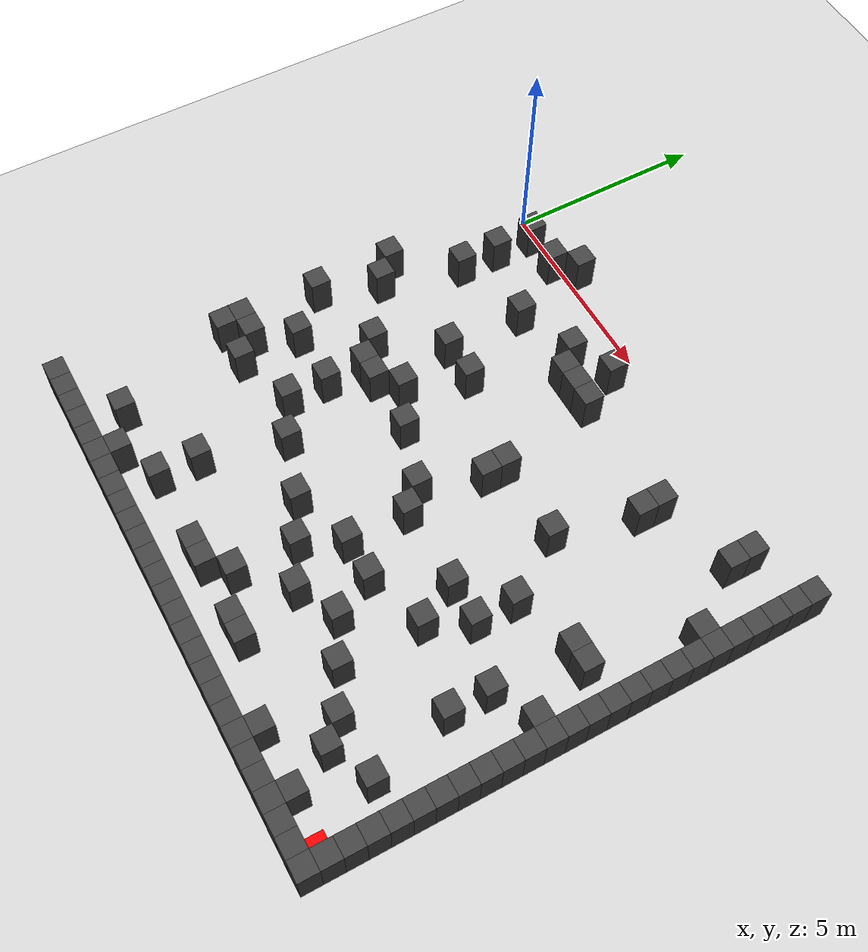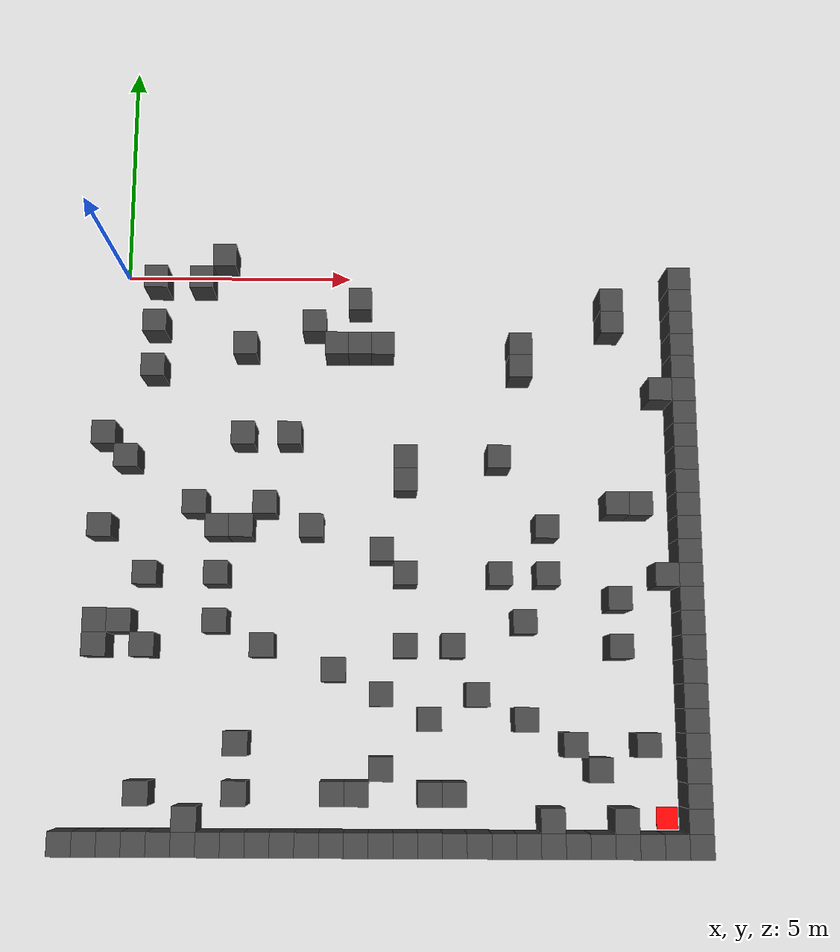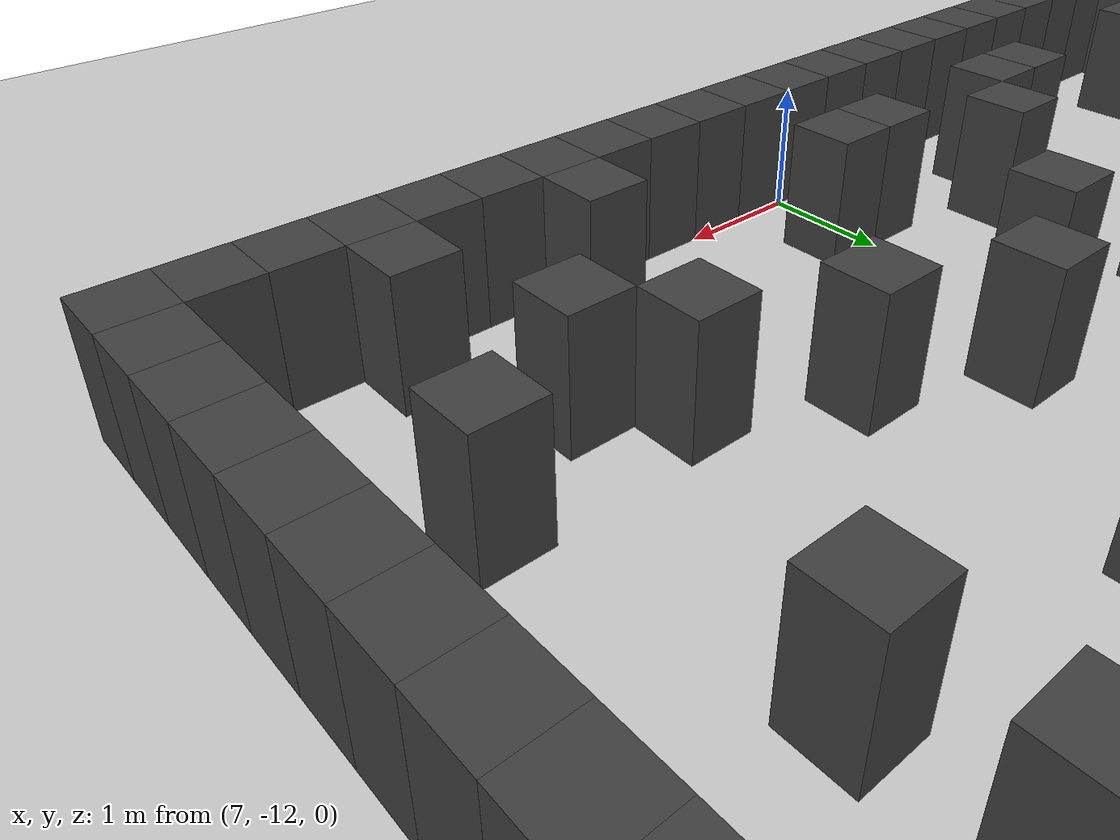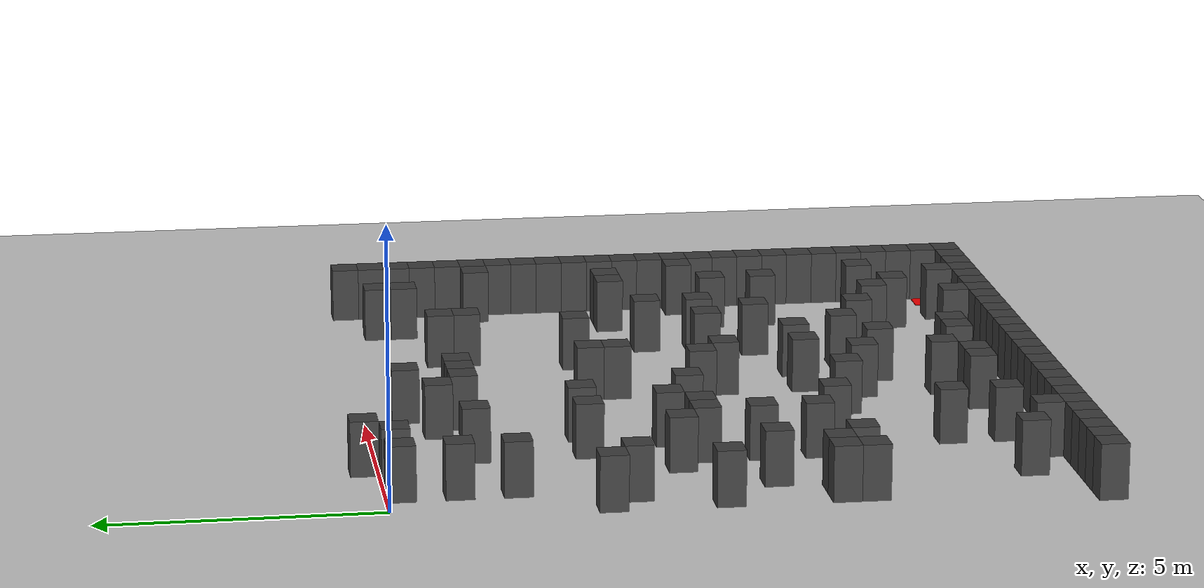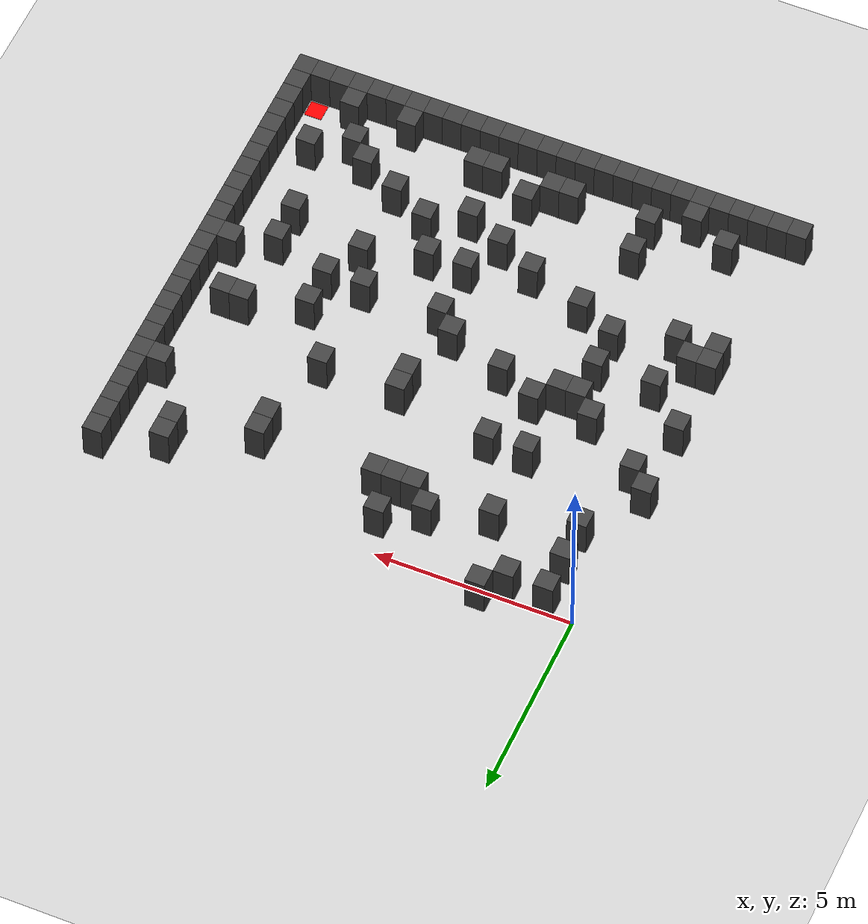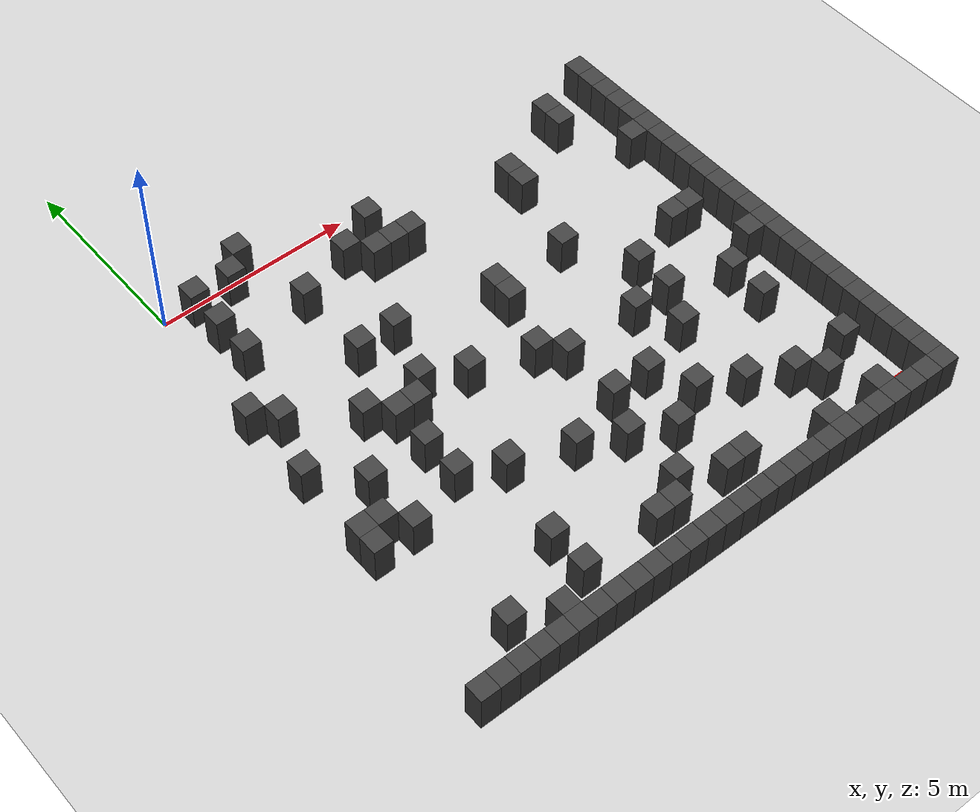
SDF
<sdf version="1.7">
 <world name="map_2375">
  <model name="ground_plane">
   <static>true</static>
   <link name="link">
    <collision name="collision">
     <geometry><plane><normal>0 0 1</normal><size>200 200</size></plane></geometry>
    </collision>
    <visual name="visual">
     <geometry><plane><normal>0 0 1</normal><size>200 200</size></plane></geometry>
     <material><ambient>0.8 0.8 0.8 1</ambient><diffuse>0.8 0.8 0.8 1</diffuse></material>
    </visual>
   </link>
  </model>
  <model name="maze_environment">
   <static>true</static>
   <link name="wall_239">
    <pose>2.250 0.250 0.500 0 0 0</pose>
    <collision name="col"><geometry><box><size>0.5 0.5 1.0</size></box></geometry></collision>
    <visual name="vis">
     <geometry><box><size>0.5 0.5 1.0</size></box></geometry>
     <material><ambient>0.15 0.15 0.15 1</ambient><diffuse>0.25 0.25 0.25 1</diffuse></material>
    </visual>
   </link>
   <link name="wall_250">
    <pose>0.750 -0.250 0.500 0 0 0</pose>
    <collision name="col"><geometry><box><size>0.5 0.5 1.0</size></box></geometry></collision>
    <visual name="vis">
     <geometry><box><size>0.5 0.5 1.0</size></box></geometry>
     <material><ambient>0.15 0.15 0.15 1</ambient><diffuse>0.25 0.25 0.25 1</diffuse></material>
    </visual>
   </link>
   <link name="wall_251">
    <pose>1.750 -0.250 0.500 0 0 0</pose>
    <collision name="col"><geometry><box><size>0.5 0.5 1.0</size></box></geometry></collision>
    <visual name="vis">
     <geometry><box><size>0.5 0.5 1.0</size></box></geometry>
     <material><ambient>0.15 0.15 0.15 1</ambient><diffuse>0.25 0.25 0.25 1</diffuse></material>
    </visual>
   </link>
   <link name="wall_252">
    <pose>12.250 -0.250 0.500 0 0 0</pose>
    <collision name="col"><geometry><box><size>0.5 0.5 1.0</size></box></geometry></collision>
    <visual name="vis">
     <geometry><box><size>0.5 0.5 1.0</size></box></geometry>
     <material><ambient>0.15 0.15 0.15 1</ambient><diffuse>0.25 0.25 0.25 1</diffuse></material>
    </visual>
   </link>
   <link name="wall_255">
    <pose>5.250 -0.750 0.500 0 0 0</pose>
    <collision name="col"><geometry><box><size>0.5 0.5 1.0</size></box></geometry></collision>
    <visual name="vis">
     <geometry><box><size>0.5 0.5 1.0</size></box></geometry>
     <material><ambient>0.15 0.15 0.15 1</ambient><diffuse>0.25 0.25 0.25 1</diffuse></material>
    </visual>
   </link>
   <link name="wall_256">
    <pose>10.750 -0.750 0.500 0 0 0</pose>
    <collision name="col"><geometry><box><size>0.5 0.5 1.0</size></box></geometry></collision>
    <visual name="vis">
     <geometry><box><size>0.5 0.5 1.0</size></box></geometry>
     <material><ambient>0.15 0.15 0.15 1</ambient><diffuse>0.25 0.25 0.25 1</diffuse></material>
    </visual>
   </link>
   <link name="wall_257">
    <pose>12.250 -0.750 0.500 0 0 0</pose>
    <collision name="col"><geometry><box><size>0.5 0.5 1.0</size></box></geometry></collision>
    <visual name="vis">
     <geometry><box><size>0.5 0.5 1.0</size></box></geometry>
     <material><ambient>0.15 0.15 0.15 1</ambient><diffuse>0.25 0.25 0.25 1</diffuse></material>
    </visual>
   </link>
   <link name="wall_266">
    <pose>0.750 -1.250 0.500 0 0 0</pose>
    <collision name="col"><geometry><box><size>0.5 0.5 1.0</size></box></geometry></collision>
    <visual name="vis">
     <geometry><box><size>0.5 0.5 1.0</size></box></geometry>
     <material><ambient>0.15 0.15 0.15 1</ambient><diffuse>0.25 0.25 0.25 1</diffuse></material>
    </visual>
   </link>
   <link name="wall_267">
    <pose>4.250 -1.250 0.500 0 0 0</pose>
    <collision name="col"><geometry><box><size>0.5 0.5 1.0</size></box></geometry></collision>
    <visual name="vis">
     <geometry><box><size>0.5 0.5 1.0</size></box></geometry>
     <material><ambient>0.15 0.15 0.15 1</ambient><diffuse>0.25 0.25 0.25 1</diffuse></material>
    </visual>
   </link>
   <link name="wall_268">
    <pose>10.750 -1.250 0.500 0 0 0</pose>
    <collision name="col"><geometry><box><size>0.5 0.5 1.0</size></box></geometry></collision>
    <visual name="vis">
     <geometry><box><size>0.5 0.5 1.0</size></box></geometry>
     <material><ambient>0.15 0.15 0.15 1</ambient><diffuse>0.25 0.25 0.25 1</diffuse></material>
    </visual>
   </link>
   <link name="wall_269">
    <pose>12.250 -1.250 0.500 0 0 0</pose>
    <collision name="col"><geometry><box><size>0.5 0.5 1.0</size></box></geometry></collision>
    <visual name="vis">
     <geometry><box><size>0.5 0.5 1.0</size></box></geometry>
     <material><ambient>0.15 0.15 0.15 1</ambient><diffuse>0.25 0.25 0.25 1</diffuse></material>
    </visual>
   </link>
   <link name="wall_273">
    <pose>2.750 -1.750 0.500 0 0 0</pose>
    <collision name="col"><geometry><box><size>0.5 0.5 1.0</size></box></geometry></collision>
    <visual name="vis">
     <geometry><box><size>0.5 0.5 1.0</size></box></geometry>
     <material><ambient>0.15 0.15 0.15 1</ambient><diffuse>0.25 0.25 0.25 1</diffuse></material>
    </visual>
   </link>
   <link name="wall_274">
    <pose>4.750 -1.750 0.500 0 0 0</pose>
    <collision name="col"><geometry><box><size>0.5 0.5 1.0</size></box></geometry></collision>
    <visual name="vis">
     <geometry><box><size>0.5 0.5 1.0</size></box></geometry>
     <material><ambient>0.15 0.15 0.15 1</ambient><diffuse>0.25 0.25 0.25 1</diffuse></material>
    </visual>
   </link>
   <link name="wall_275">
    <pose>5.250 -1.750 0.500 0 0 0</pose>
    <collision name="col"><geometry><box><size>0.5 0.5 1.0</size></box></geometry></collision>
    <visual name="vis">
     <geometry><box><size>0.5 0.5 1.0</size></box></geometry>
     <material><ambient>0.15 0.15 0.15 1</ambient><diffuse>0.25 0.25 0.25 1</diffuse></material>
    </visual>
   </link>
   <link name="wall_276">
    <pose>5.750 -1.750 0.500 0 0 0</pose>
    <collision name="col"><geometry><box><size>0.5 0.5 1.0</size></box></geometry></collision>
    <visual name="vis">
     <geometry><box><size>0.5 0.5 1.0</size></box></geometry>
     <material><ambient>0.15 0.15 0.15 1</ambient><diffuse>0.25 0.25 0.25 1</diffuse></material>
    </visual>
   </link>
   <link name="wall_277">
    <pose>8.750 -1.750 0.500 0 0 0</pose>
    <collision name="col"><geometry><box><size>0.5 0.5 1.0</size></box></geometry></collision>
    <visual name="vis">
     <geometry><box><size>0.5 0.5 1.0</size></box></geometry>
     <material><ambient>0.15 0.15 0.15 1</ambient><diffuse>0.25 0.25 0.25 1</diffuse></material>
    </visual>
   </link>
   <link name="wall_278">
    <pose>12.250 -1.750 0.500 0 0 0</pose>
    <collision name="col"><geometry><box><size>0.5 0.5 1.0</size></box></geometry></collision>
    <visual name="vis">
     <geometry><box><size>0.5 0.5 1.0</size></box></geometry>
     <material><ambient>0.15 0.15 0.15 1</ambient><diffuse>0.25 0.25 0.25 1</diffuse></material>
    </visual>
   </link>
   <link name="wall_284">
    <pose>0.750 -2.250 0.500 0 0 0</pose>
    <collision name="col"><geometry><box><size>0.5 0.5 1.0</size></box></geometry></collision>
    <visual name="vis">
     <geometry><box><size>0.5 0.5 1.0</size></box></geometry>
     <material><ambient>0.15 0.15 0.15 1</ambient><diffuse>0.25 0.25 0.25 1</diffuse></material>
    </visual>
   </link>
   <link name="wall_285">
    <pose>8.750 -2.250 0.500 0 0 0</pose>
    <collision name="col"><geometry><box><size>0.5 0.5 1.0</size></box></geometry></collision>
    <visual name="vis">
     <geometry><box><size>0.5 0.5 1.0</size></box></geometry>
     <material><ambient>0.15 0.15 0.15 1</ambient><diffuse>0.25 0.25 0.25 1</diffuse></material>
    </visual>
   </link>
   <link name="wall_286">
    <pose>12.250 -2.250 0.500 0 0 0</pose>
    <collision name="col"><geometry><box><size>0.5 0.5 1.0</size></box></geometry></collision>
    <visual name="vis">
     <geometry><box><size>0.5 0.5 1.0</size></box></geometry>
     <material><ambient>0.15 0.15 0.15 1</ambient><diffuse>0.25 0.25 0.25 1</diffuse></material>
    </visual>
   </link>
   <link name="wall_292">
    <pose>11.750 -2.750 0.500 0 0 0</pose>
    <collision name="col"><geometry><box><size>0.5 0.5 1.0</size></box></geometry></collision>
    <visual name="vis">
     <geometry><box><size>0.5 0.5 1.0</size></box></geometry>
     <material><ambient>0.15 0.15 0.15 1</ambient><diffuse>0.25 0.25 0.25 1</diffuse></material>
    </visual>
   </link>
   <link name="wall_293">
    <pose>12.250 -2.750 0.500 0 0 0</pose>
    <collision name="col"><geometry><box><size>0.5 0.5 1.0</size></box></geometry></collision>
    <visual name="vis">
     <geometry><box><size>0.5 0.5 1.0</size></box></geometry>
     <material><ambient>0.15 0.15 0.15 1</ambient><diffuse>0.25 0.25 0.25 1</diffuse></material>
    </visual>
   </link>
   <link name="wall_298">
    <pose>12.250 -3.250 0.500 0 0 0</pose>
    <collision name="col"><geometry><box><size>0.5 0.5 1.0</size></box></geometry></collision>
    <visual name="vis">
     <geometry><box><size>0.5 0.5 1.0</size></box></geometry>
     <material><ambient>0.15 0.15 0.15 1</ambient><diffuse>0.25 0.25 0.25 1</diffuse></material>
    </visual>
   </link>
   <link name="wall_303">
    <pose>-0.250 -3.750 0.500 0 0 0</pose>
    <collision name="col"><geometry><box><size>0.5 0.5 1.0</size></box></geometry></collision>
    <visual name="vis">
     <geometry><box><size>0.5 0.5 1.0</size></box></geometry>
     <material><ambient>0.15 0.15 0.15 1</ambient><diffuse>0.25 0.25 0.25 1</diffuse></material>
    </visual>
   </link>
   <link name="wall_304">
    <pose>2.750 -3.750 0.500 0 0 0</pose>
    <collision name="col"><geometry><box><size>0.5 0.5 1.0</size></box></geometry></collision>
    <visual name="vis">
     <geometry><box><size>0.5 0.5 1.0</size></box></geometry>
     <material><ambient>0.15 0.15 0.15 1</ambient><diffuse>0.25 0.25 0.25 1</diffuse></material>
    </visual>
   </link>
   <link name="wall_305">
    <pose>3.750 -3.750 0.500 0 0 0</pose>
    <collision name="col"><geometry><box><size>0.5 0.5 1.0</size></box></geometry></collision>
    <visual name="vis">
     <geometry><box><size>0.5 0.5 1.0</size></box></geometry>
     <material><ambient>0.15 0.15 0.15 1</ambient><diffuse>0.25 0.25 0.25 1</diffuse></material>
    </visual>
   </link>
   <link name="wall_306">
    <pose>12.250 -3.750 0.500 0 0 0</pose>
    <collision name="col"><geometry><box><size>0.5 0.5 1.0</size></box></geometry></collision>
    <visual name="vis">
     <geometry><box><size>0.5 0.5 1.0</size></box></geometry>
     <material><ambient>0.15 0.15 0.15 1</ambient><diffuse>0.25 0.25 0.25 1</diffuse></material>
    </visual>
   </link>
   <link name="wall_312">
    <pose>0.250 -4.250 0.500 0 0 0</pose>
    <collision name="col"><geometry><box><size>0.5 0.5 1.0</size></box></geometry></collision>
    <visual name="vis">
     <geometry><box><size>0.5 0.5 1.0</size></box></geometry>
     <material><ambient>0.15 0.15 0.15 1</ambient><diffuse>0.25 0.25 0.25 1</diffuse></material>
    </visual>
   </link>
   <link name="wall_313">
    <pose>6.250 -4.250 0.500 0 0 0</pose>
    <collision name="col"><geometry><box><size>0.5 0.5 1.0</size></box></geometry></collision>
    <visual name="vis">
     <geometry><box><size>0.5 0.5 1.0</size></box></geometry>
     <material><ambient>0.15 0.15 0.15 1</ambient><diffuse>0.25 0.25 0.25 1</diffuse></material>
    </visual>
   </link>
   <link name="wall_314">
    <pose>8.250 -4.250 0.500 0 0 0</pose>
    <collision name="col"><geometry><box><size>0.5 0.5 1.0</size></box></geometry></collision>
    <visual name="vis">
     <geometry><box><size>0.5 0.5 1.0</size></box></geometry>
     <material><ambient>0.15 0.15 0.15 1</ambient><diffuse>0.25 0.25 0.25 1</diffuse></material>
    </visual>
   </link>
   <link name="wall_315">
    <pose>12.250 -4.250 0.500 0 0 0</pose>
    <collision name="col"><geometry><box><size>0.5 0.5 1.0</size></box></geometry></collision>
    <visual name="vis">
     <geometry><box><size>0.5 0.5 1.0</size></box></geometry>
     <material><ambient>0.15 0.15 0.15 1</ambient><diffuse>0.25 0.25 0.25 1</diffuse></material>
    </visual>
   </link>
   <link name="wall_319">
    <pose>6.250 -4.750 0.500 0 0 0</pose>
    <collision name="col"><geometry><box><size>0.5 0.5 1.0</size></box></geometry></collision>
    <visual name="vis">
     <geometry><box><size>0.5 0.5 1.0</size></box></geometry>
     <material><ambient>0.15 0.15 0.15 1</ambient><diffuse>0.25 0.25 0.25 1</diffuse></material>
    </visual>
   </link>
   <link name="wall_320">
    <pose>12.250 -4.750 0.500 0 0 0</pose>
    <collision name="col"><geometry><box><size>0.5 0.5 1.0</size></box></geometry></collision>
    <visual name="vis">
     <geometry><box><size>0.5 0.5 1.0</size></box></geometry>
     <material><ambient>0.15 0.15 0.15 1</ambient><diffuse>0.25 0.25 0.25 1</diffuse></material>
    </visual>
   </link>
   <link name="wall_325">
    <pose>1.750 -5.250 0.500 0 0 0</pose>
    <collision name="col"><geometry><box><size>0.5 0.5 1.0</size></box></geometry></collision>
    <visual name="vis">
     <geometry><box><size>0.5 0.5 1.0</size></box></geometry>
     <material><ambient>0.15 0.15 0.15 1</ambient><diffuse>0.25 0.25 0.25 1</diffuse></material>
    </visual>
   </link>
   <link name="wall_326">
    <pose>3.250 -5.250 0.500 0 0 0</pose>
    <collision name="col"><geometry><box><size>0.5 0.5 1.0</size></box></geometry></collision>
    <visual name="vis">
     <geometry><box><size>0.5 0.5 1.0</size></box></geometry>
     <material><ambient>0.15 0.15 0.15 1</ambient><diffuse>0.25 0.25 0.25 1</diffuse></material>
    </visual>
   </link>
   <link name="wall_327">
    <pose>10.750 -5.250 0.500 0 0 0</pose>
    <collision name="col"><geometry><box><size>0.5 0.5 1.0</size></box></geometry></collision>
    <visual name="vis">
     <geometry><box><size>0.5 0.5 1.0</size></box></geometry>
     <material><ambient>0.15 0.15 0.15 1</ambient><diffuse>0.25 0.25 0.25 1</diffuse></material>
    </visual>
   </link>
   <link name="wall_328">
    <pose>11.250 -5.250 0.500 0 0 0</pose>
    <collision name="col"><geometry><box><size>0.5 0.5 1.0</size></box></geometry></collision>
    <visual name="vis">
     <geometry><box><size>0.5 0.5 1.0</size></box></geometry>
     <material><ambient>0.15 0.15 0.15 1</ambient><diffuse>0.25 0.25 0.25 1</diffuse></material>
    </visual>
   </link>
   <link name="wall_329">
    <pose>12.250 -5.250 0.500 0 0 0</pose>
    <collision name="col"><geometry><box><size>0.5 0.5 1.0</size></box></geometry></collision>
    <visual name="vis">
     <geometry><box><size>0.5 0.5 1.0</size></box></geometry>
     <material><ambient>0.15 0.15 0.15 1</ambient><diffuse>0.25 0.25 0.25 1</diffuse></material>
    </visual>
   </link>
   <link name="wall_332">
    <pose>-0.250 -5.750 0.500 0 0 0</pose>
    <collision name="col"><geometry><box><size>0.5 0.5 1.0</size></box></geometry></collision>
    <visual name="vis">
     <geometry><box><size>0.5 0.5 1.0</size></box></geometry>
     <material><ambient>0.15 0.15 0.15 1</ambient><diffuse>0.25 0.25 0.25 1</diffuse></material>
    </visual>
   </link>
   <link name="wall_333">
    <pose>2.250 -5.750 0.500 0 0 0</pose>
    <collision name="col"><geometry><box><size>0.5 0.5 1.0</size></box></geometry></collision>
    <visual name="vis">
     <geometry><box><size>0.5 0.5 1.0</size></box></geometry>
     <material><ambient>0.15 0.15 0.15 1</ambient><diffuse>0.25 0.25 0.25 1</diffuse></material>
    </visual>
   </link>
   <link name="wall_334">
    <pose>2.750 -5.750 0.500 0 0 0</pose>
    <collision name="col"><geometry><box><size>0.5 0.5 1.0</size></box></geometry></collision>
    <visual name="vis">
     <geometry><box><size>0.5 0.5 1.0</size></box></geometry>
     <material><ambient>0.15 0.15 0.15 1</ambient><diffuse>0.25 0.25 0.25 1</diffuse></material>
    </visual>
   </link>
   <link name="wall_335">
    <pose>4.250 -5.750 0.500 0 0 0</pose>
    <collision name="col"><geometry><box><size>0.5 0.5 1.0</size></box></geometry></collision>
    <visual name="vis">
     <geometry><box><size>0.5 0.5 1.0</size></box></geometry>
     <material><ambient>0.15 0.15 0.15 1</ambient><diffuse>0.25 0.25 0.25 1</diffuse></material>
    </visual>
   </link>
   <link name="wall_336">
    <pose>9.250 -5.750 0.500 0 0 0</pose>
    <collision name="col"><geometry><box><size>0.5 0.5 1.0</size></box></geometry></collision>
    <visual name="vis">
     <geometry><box><size>0.5 0.5 1.0</size></box></geometry>
     <material><ambient>0.15 0.15 0.15 1</ambient><diffuse>0.25 0.25 0.25 1</diffuse></material>
    </visual>
   </link>
   <link name="wall_337">
    <pose>12.250 -5.750 0.500 0 0 0</pose>
    <collision name="col"><geometry><box><size>0.5 0.5 1.0</size></box></geometry></collision>
    <visual name="vis">
     <geometry><box><size>0.5 0.5 1.0</size></box></geometry>
     <material><ambient>0.15 0.15 0.15 1</ambient><diffuse>0.25 0.25 0.25 1</diffuse></material>
    </visual>
   </link>
   <link name="wall_341">
    <pose>5.750 -6.250 0.500 0 0 0</pose>
    <collision name="col"><geometry><box><size>0.5 0.5 1.0</size></box></geometry></collision>
    <visual name="vis">
     <geometry><box><size>0.5 0.5 1.0</size></box></geometry>
     <material><ambient>0.15 0.15 0.15 1</ambient><diffuse>0.25 0.25 0.25 1</diffuse></material>
    </visual>
   </link>
   <link name="wall_342">
    <pose>12.250 -6.250 0.500 0 0 0</pose>
    <collision name="col"><geometry><box><size>0.5 0.5 1.0</size></box></geometry></collision>
    <visual name="vis">
     <geometry><box><size>0.5 0.5 1.0</size></box></geometry>
     <material><ambient>0.15 0.15 0.15 1</ambient><diffuse>0.25 0.25 0.25 1</diffuse></material>
    </visual>
   </link>
   <link name="wall_345">
    <pose>0.750 -6.750 0.500 0 0 0</pose>
    <collision name="col"><geometry><box><size>0.5 0.5 1.0</size></box></geometry></collision>
    <visual name="vis">
     <geometry><box><size>0.5 0.5 1.0</size></box></geometry>
     <material><ambient>0.15 0.15 0.15 1</ambient><diffuse>0.25 0.25 0.25 1</diffuse></material>
    </visual>
   </link>
   <link name="wall_346">
    <pose>2.250 -6.750 0.500 0 0 0</pose>
    <collision name="col"><geometry><box><size>0.5 0.5 1.0</size></box></geometry></collision>
    <visual name="vis">
     <geometry><box><size>0.5 0.5 1.0</size></box></geometry>
     <material><ambient>0.15 0.15 0.15 1</ambient><diffuse>0.25 0.25 0.25 1</diffuse></material>
    </visual>
   </link>
   <link name="wall_347">
    <pose>6.250 -6.750 0.500 0 0 0</pose>
    <collision name="col"><geometry><box><size>0.5 0.5 1.0</size></box></geometry></collision>
    <visual name="vis">
     <geometry><box><size>0.5 0.5 1.0</size></box></geometry>
     <material><ambient>0.15 0.15 0.15 1</ambient><diffuse>0.25 0.25 0.25 1</diffuse></material>
    </visual>
   </link>
   <link name="wall_348">
    <pose>8.250 -6.750 0.500 0 0 0</pose>
    <collision name="col"><geometry><box><size>0.5 0.5 1.0</size></box></geometry></collision>
    <visual name="vis">
     <geometry><box><size>0.5 0.5 1.0</size></box></geometry>
     <material><ambient>0.15 0.15 0.15 1</ambient><diffuse>0.25 0.25 0.25 1</diffuse></material>
    </visual>
   </link>
   <link name="wall_349">
    <pose>9.250 -6.750 0.500 0 0 0</pose>
    <collision name="col"><geometry><box><size>0.5 0.5 1.0</size></box></geometry></collision>
    <visual name="vis">
     <geometry><box><size>0.5 0.5 1.0</size></box></geometry>
     <material><ambient>0.15 0.15 0.15 1</ambient><diffuse>0.25 0.25 0.25 1</diffuse></material>
    </visual>
   </link>
   <link name="wall_350">
    <pose>11.750 -6.750 0.500 0 0 0</pose>
    <collision name="col"><geometry><box><size>0.5 0.5 1.0</size></box></geometry></collision>
    <visual name="vis">
     <geometry><box><size>0.5 0.5 1.0</size></box></geometry>
     <material><ambient>0.15 0.15 0.15 1</ambient><diffuse>0.25 0.25 0.25 1</diffuse></material>
    </visual>
   </link>
   <link name="wall_351">
    <pose>12.250 -6.750 0.500 0 0 0</pose>
    <collision name="col"><geometry><box><size>0.5 0.5 1.0</size></box></geometry></collision>
    <visual name="vis">
     <geometry><box><size>0.5 0.5 1.0</size></box></geometry>
     <material><ambient>0.15 0.15 0.15 1</ambient><diffuse>0.25 0.25 0.25 1</diffuse></material>
    </visual>
   </link>
   <link name="wall_356">
    <pose>10.750 -7.250 0.500 0 0 0</pose>
    <collision name="col"><geometry><box><size>0.5 0.5 1.0</size></box></geometry></collision>
    <visual name="vis">
     <geometry><box><size>0.5 0.5 1.0</size></box></geometry>
     <material><ambient>0.15 0.15 0.15 1</ambient><diffuse>0.25 0.25 0.25 1</diffuse></material>
    </visual>
   </link>
   <link name="wall_357">
    <pose>12.250 -7.250 0.500 0 0 0</pose>
    <collision name="col"><geometry><box><size>0.5 0.5 1.0</size></box></geometry></collision>
    <visual name="vis">
     <geometry><box><size>0.5 0.5 1.0</size></box></geometry>
     <material><ambient>0.15 0.15 0.15 1</ambient><diffuse>0.25 0.25 0.25 1</diffuse></material>
    </visual>
   </link>
   <link name="wall_360">
    <pose>-0.250 -7.750 0.500 0 0 0</pose>
    <collision name="col"><geometry><box><size>0.5 0.5 1.0</size></box></geometry></collision>
    <visual name="vis">
     <geometry><box><size>0.5 0.5 1.0</size></box></geometry>
     <material><ambient>0.15 0.15 0.15 1</ambient><diffuse>0.25 0.25 0.25 1</diffuse></material>
    </visual>
   </link>
   <link name="wall_361">
    <pose>0.250 -7.750 0.500 0 0 0</pose>
    <collision name="col"><geometry><box><size>0.5 0.5 1.0</size></box></geometry></collision>
    <visual name="vis">
     <geometry><box><size>0.5 0.5 1.0</size></box></geometry>
     <material><ambient>0.15 0.15 0.15 1</ambient><diffuse>0.25 0.25 0.25 1</diffuse></material>
    </visual>
   </link>
   <link name="wall_362">
    <pose>2.250 -7.750 0.500 0 0 0</pose>
    <collision name="col"><geometry><box><size>0.5 0.5 1.0</size></box></geometry></collision>
    <visual name="vis">
     <geometry><box><size>0.5 0.5 1.0</size></box></geometry>
     <material><ambient>0.15 0.15 0.15 1</ambient><diffuse>0.25 0.25 0.25 1</diffuse></material>
    </visual>
   </link>
   <link name="wall_363">
    <pose>8.750 -7.750 0.500 0 0 0</pose>
    <collision name="col"><geometry><box><size>0.5 0.5 1.0</size></box></geometry></collision>
    <visual name="vis">
     <geometry><box><size>0.5 0.5 1.0</size></box></geometry>
     <material><ambient>0.15 0.15 0.15 1</ambient><diffuse>0.25 0.25 0.25 1</diffuse></material>
    </visual>
   </link>
   <link name="wall_364">
    <pose>12.250 -7.750 0.500 0 0 0</pose>
    <collision name="col"><geometry><box><size>0.5 0.5 1.0</size></box></geometry></collision>
    <visual name="vis">
     <geometry><box><size>0.5 0.5 1.0</size></box></geometry>
     <material><ambient>0.15 0.15 0.15 1</ambient><diffuse>0.25 0.25 0.25 1</diffuse></material>
    </visual>
   </link>
   <link name="wall_368">
    <pose>-0.250 -8.250 0.500 0 0 0</pose>
    <collision name="col"><geometry><box><size>0.5 0.5 1.0</size></box></geometry></collision>
    <visual name="vis">
     <geometry><box><size>0.5 0.5 1.0</size></box></geometry>
     <material><ambient>0.15 0.15 0.15 1</ambient><diffuse>0.25 0.25 0.25 1</diffuse></material>
    </visual>
   </link>
   <link name="wall_369">
    <pose>0.750 -8.250 0.500 0 0 0</pose>
    <collision name="col"><geometry><box><size>0.5 0.5 1.0</size></box></geometry></collision>
    <visual name="vis">
     <geometry><box><size>0.5 0.5 1.0</size></box></geometry>
     <material><ambient>0.15 0.15 0.15 1</ambient><diffuse>0.25 0.25 0.25 1</diffuse></material>
    </visual>
   </link>
   <link name="wall_370">
    <pose>3.250 -8.250 0.500 0 0 0</pose>
    <collision name="col"><geometry><box><size>0.5 0.5 1.0</size></box></geometry></collision>
    <visual name="vis">
     <geometry><box><size>0.5 0.5 1.0</size></box></geometry>
     <material><ambient>0.15 0.15 0.15 1</ambient><diffuse>0.25 0.25 0.25 1</diffuse></material>
    </visual>
   </link>
   <link name="wall_371">
    <pose>6.250 -8.250 0.500 0 0 0</pose>
    <collision name="col"><geometry><box><size>0.5 0.5 1.0</size></box></geometry></collision>
    <visual name="vis">
     <geometry><box><size>0.5 0.5 1.0</size></box></geometry>
     <material><ambient>0.15 0.15 0.15 1</ambient><diffuse>0.25 0.25 0.25 1</diffuse></material>
    </visual>
   </link>
   <link name="wall_372">
    <pose>7.250 -8.250 0.500 0 0 0</pose>
    <collision name="col"><geometry><box><size>0.5 0.5 1.0</size></box></geometry></collision>
    <visual name="vis">
     <geometry><box><size>0.5 0.5 1.0</size></box></geometry>
     <material><ambient>0.15 0.15 0.15 1</ambient><diffuse>0.25 0.25 0.25 1</diffuse></material>
    </visual>
   </link>
   <link name="wall_373">
    <pose>10.750 -8.250 0.500 0 0 0</pose>
    <collision name="col"><geometry><box><size>0.5 0.5 1.0</size></box></geometry></collision>
    <visual name="vis">
     <geometry><box><size>0.5 0.5 1.0</size></box></geometry>
     <material><ambient>0.15 0.15 0.15 1</ambient><diffuse>0.25 0.25 0.25 1</diffuse></material>
    </visual>
   </link>
   <link name="wall_374">
    <pose>12.250 -8.250 0.500 0 0 0</pose>
    <collision name="col"><geometry><box><size>0.5 0.5 1.0</size></box></geometry></collision>
    <visual name="vis">
     <geometry><box><size>0.5 0.5 1.0</size></box></geometry>
     <material><ambient>0.15 0.15 0.15 1</ambient><diffuse>0.25 0.25 0.25 1</diffuse></material>
    </visual>
   </link>
   <link name="wall_381">
    <pose>4.750 -8.750 0.500 0 0 0</pose>
    <collision name="col"><geometry><box><size>0.5 0.5 1.0</size></box></geometry></collision>
    <visual name="vis">
     <geometry><box><size>0.5 0.5 1.0</size></box></geometry>
     <material><ambient>0.15 0.15 0.15 1</ambient><diffuse>0.25 0.25 0.25 1</diffuse></material>
    </visual>
   </link>
   <link name="wall_382">
    <pose>12.250 -8.750 0.500 0 0 0</pose>
    <collision name="col"><geometry><box><size>0.5 0.5 1.0</size></box></geometry></collision>
    <visual name="vis">
     <geometry><box><size>0.5 0.5 1.0</size></box></geometry>
     <material><ambient>0.15 0.15 0.15 1</ambient><diffuse>0.25 0.25 0.25 1</diffuse></material>
    </visual>
   </link>
   <link name="wall_388">
    <pose>5.750 -9.250 0.500 0 0 0</pose>
    <collision name="col"><geometry><box><size>0.5 0.5 1.0</size></box></geometry></collision>
    <visual name="vis">
     <geometry><box><size>0.5 0.5 1.0</size></box></geometry>
     <material><ambient>0.15 0.15 0.15 1</ambient><diffuse>0.25 0.25 0.25 1</diffuse></material>
    </visual>
   </link>
   <link name="wall_389">
    <pose>7.750 -9.250 0.500 0 0 0</pose>
    <collision name="col"><geometry><box><size>0.5 0.5 1.0</size></box></geometry></collision>
    <visual name="vis">
     <geometry><box><size>0.5 0.5 1.0</size></box></geometry>
     <material><ambient>0.15 0.15 0.15 1</ambient><diffuse>0.25 0.25 0.25 1</diffuse></material>
    </visual>
   </link>
   <link name="wall_390">
    <pose>12.250 -9.250 0.500 0 0 0</pose>
    <collision name="col"><geometry><box><size>0.5 0.5 1.0</size></box></geometry></collision>
    <visual name="vis">
     <geometry><box><size>0.5 0.5 1.0</size></box></geometry>
     <material><ambient>0.15 0.15 0.15 1</ambient><diffuse>0.25 0.25 0.25 1</diffuse></material>
    </visual>
   </link>
   <link name="wall_394">
    <pose>6.750 -9.750 0.500 0 0 0</pose>
    <collision name="col"><geometry><box><size>0.5 0.5 1.0</size></box></geometry></collision>
    <visual name="vis">
     <geometry><box><size>0.5 0.5 1.0</size></box></geometry>
     <material><ambient>0.15 0.15 0.15 1</ambient><diffuse>0.25 0.25 0.25 1</diffuse></material>
    </visual>
   </link>
   <link name="wall_395">
    <pose>8.750 -9.750 0.500 0 0 0</pose>
    <collision name="col"><geometry><box><size>0.5 0.5 1.0</size></box></geometry></collision>
    <visual name="vis">
     <geometry><box><size>0.5 0.5 1.0</size></box></geometry>
     <material><ambient>0.15 0.15 0.15 1</ambient><diffuse>0.25 0.25 0.25 1</diffuse></material>
    </visual>
   </link>
   <link name="wall_396">
    <pose>12.250 -9.750 0.500 0 0 0</pose>
    <collision name="col"><geometry><box><size>0.5 0.5 1.0</size></box></geometry></collision>
    <visual name="vis">
     <geometry><box><size>0.5 0.5 1.0</size></box></geometry>
     <material><ambient>0.15 0.15 0.15 1</ambient><diffuse>0.25 0.25 0.25 1</diffuse></material>
    </visual>
   </link>
   <link name="wall_401">
    <pose>2.750 -10.250 0.500 0 0 0</pose>
    <collision name="col"><geometry><box><size>0.5 0.5 1.0</size></box></geometry></collision>
    <visual name="vis">
     <geometry><box><size>0.5 0.5 1.0</size></box></geometry>
     <material><ambient>0.15 0.15 0.15 1</ambient><diffuse>0.25 0.25 0.25 1</diffuse></material>
    </visual>
   </link>
   <link name="wall_402">
    <pose>9.750 -10.250 0.500 0 0 0</pose>
    <collision name="col"><geometry><box><size>0.5 0.5 1.0</size></box></geometry></collision>
    <visual name="vis">
     <geometry><box><size>0.5 0.5 1.0</size></box></geometry>
     <material><ambient>0.15 0.15 0.15 1</ambient><diffuse>0.25 0.25 0.25 1</diffuse></material>
    </visual>
   </link>
   <link name="wall_403">
    <pose>11.250 -10.250 0.500 0 0 0</pose>
    <collision name="col"><geometry><box><size>0.5 0.5 1.0</size></box></geometry></collision>
    <visual name="vis">
     <geometry><box><size>0.5 0.5 1.0</size></box></geometry>
     <material><ambient>0.15 0.15 0.15 1</ambient><diffuse>0.25 0.25 0.25 1</diffuse></material>
    </visual>
   </link>
   <link name="wall_404">
    <pose>12.250 -10.250 0.500 0 0 0</pose>
    <collision name="col"><geometry><box><size>0.5 0.5 1.0</size></box></geometry></collision>
    <visual name="vis">
     <geometry><box><size>0.5 0.5 1.0</size></box></geometry>
     <material><ambient>0.15 0.15 0.15 1</ambient><diffuse>0.25 0.25 0.25 1</diffuse></material>
    </visual>
   </link>
   <link name="wall_410">
    <pose>5.750 -10.750 0.500 0 0 0</pose>
    <collision name="col"><geometry><box><size>0.5 0.5 1.0</size></box></geometry></collision>
    <visual name="vis">
     <geometry><box><size>0.5 0.5 1.0</size></box></geometry>
     <material><ambient>0.15 0.15 0.15 1</ambient><diffuse>0.25 0.25 0.25 1</diffuse></material>
    </visual>
   </link>
   <link name="wall_411">
    <pose>10.250 -10.750 0.500 0 0 0</pose>
    <collision name="col"><geometry><box><size>0.5 0.5 1.0</size></box></geometry></collision>
    <visual name="vis">
     <geometry><box><size>0.5 0.5 1.0</size></box></geometry>
     <material><ambient>0.15 0.15 0.15 1</ambient><diffuse>0.25 0.25 0.25 1</diffuse></material>
    </visual>
   </link>
   <link name="wall_412">
    <pose>12.250 -10.750 0.500 0 0 0</pose>
    <collision name="col"><geometry><box><size>0.5 0.5 1.0</size></box></geometry></collision>
    <visual name="vis">
     <geometry><box><size>0.5 0.5 1.0</size></box></geometry>
     <material><ambient>0.15 0.15 0.15 1</ambient><diffuse>0.25 0.25 0.25 1</diffuse></material>
    </visual>
   </link>
   <link name="wall_417">
    <pose>0.750 -11.250 0.500 0 0 0</pose>
    <collision name="col"><geometry><box><size>0.5 0.5 1.0</size></box></geometry></collision>
    <visual name="vis">
     <geometry><box><size>0.5 0.5 1.0</size></box></geometry>
     <material><ambient>0.15 0.15 0.15 1</ambient><diffuse>0.25 0.25 0.25 1</diffuse></material>
    </visual>
   </link>
   <link name="wall_418">
    <pose>2.750 -11.250 0.500 0 0 0</pose>
    <collision name="col"><geometry><box><size>0.5 0.5 1.0</size></box></geometry></collision>
    <visual name="vis">
     <geometry><box><size>0.5 0.5 1.0</size></box></geometry>
     <material><ambient>0.15 0.15 0.15 1</ambient><diffuse>0.25 0.25 0.25 1</diffuse></material>
    </visual>
   </link>
   <link name="wall_419">
    <pose>4.750 -11.250 0.500 0 0 0</pose>
    <collision name="col"><geometry><box><size>0.5 0.5 1.0</size></box></geometry></collision>
    <visual name="vis">
     <geometry><box><size>0.5 0.5 1.0</size></box></geometry>
     <material><ambient>0.15 0.15 0.15 1</ambient><diffuse>0.25 0.25 0.25 1</diffuse></material>
    </visual>
   </link>
   <link name="wall_420">
    <pose>5.250 -11.250 0.500 0 0 0</pose>
    <collision name="col"><geometry><box><size>0.5 0.5 1.0</size></box></geometry></collision>
    <visual name="vis">
     <geometry><box><size>0.5 0.5 1.0</size></box></geometry>
     <material><ambient>0.15 0.15 0.15 1</ambient><diffuse>0.25 0.25 0.25 1</diffuse></material>
    </visual>
   </link>
   <link name="wall_421">
    <pose>6.750 -11.250 0.500 0 0 0</pose>
    <collision name="col"><geometry><box><size>0.5 0.5 1.0</size></box></geometry></collision>
    <visual name="vis">
     <geometry><box><size>0.5 0.5 1.0</size></box></geometry>
     <material><ambient>0.15 0.15 0.15 1</ambient><diffuse>0.25 0.25 0.25 1</diffuse></material>
    </visual>
   </link>
   <link name="wall_422">
    <pose>7.250 -11.250 0.500 0 0 0</pose>
    <collision name="col"><geometry><box><size>0.5 0.5 1.0</size></box></geometry></collision>
    <visual name="vis">
     <geometry><box><size>0.5 0.5 1.0</size></box></geometry>
     <material><ambient>0.15 0.15 0.15 1</ambient><diffuse>0.25 0.25 0.25 1</diffuse></material>
    </visual>
   </link>
   <link name="wall_423">
    <pose>12.250 -11.250 0.500 0 0 0</pose>
    <collision name="col"><geometry><box><size>0.5 0.5 1.0</size></box></geometry></collision>
    <visual name="vis">
     <geometry><box><size>0.5 0.5 1.0</size></box></geometry>
     <material><ambient>0.15 0.15 0.15 1</ambient><diffuse>0.25 0.25 0.25 1</diffuse></material>
    </visual>
   </link>
   <link name="wall_427">
    <pose>1.750 -11.750 0.500 0 0 0</pose>
    <collision name="col"><geometry><box><size>0.5 0.5 1.0</size></box></geometry></collision>
    <visual name="vis">
     <geometry><box><size>0.5 0.5 1.0</size></box></geometry>
     <material><ambient>0.15 0.15 0.15 1</ambient><diffuse>0.25 0.25 0.25 1</diffuse></material>
    </visual>
   </link>
   <link name="wall_428">
    <pose>9.250 -11.750 0.500 0 0 0</pose>
    <collision name="col"><geometry><box><size>0.5 0.5 1.0</size></box></geometry></collision>
    <visual name="vis">
     <geometry><box><size>0.5 0.5 1.0</size></box></geometry>
     <material><ambient>0.15 0.15 0.15 1</ambient><diffuse>0.25 0.25 0.25 1</diffuse></material>
    </visual>
   </link>
   <link name="wall_429">
    <pose>10.750 -11.750 0.500 0 0 0</pose>
    <collision name="col"><geometry><box><size>0.5 0.5 1.0</size></box></geometry></collision>
    <visual name="vis">
     <geometry><box><size>0.5 0.5 1.0</size></box></geometry>
     <material><ambient>0.15 0.15 0.15 1</ambient><diffuse>0.25 0.25 0.25 1</diffuse></material>
    </visual>
   </link>
   <link name="wall_430">
    <pose>12.250 -11.750 0.500 0 0 0</pose>
    <collision name="col"><geometry><box><size>0.5 0.5 1.0</size></box></geometry></collision>
    <visual name="vis">
     <geometry><box><size>0.5 0.5 1.0</size></box></geometry>
     <material><ambient>0.15 0.15 0.15 1</ambient><diffuse>0.25 0.25 0.25 1</diffuse></material>
    </visual>
   </link>
   <link name="wall_454">
    <pose>-0.750 -12.250 0.500 0 0 0</pose>
    <collision name="col"><geometry><box><size>0.5 0.5 1.0</size></box></geometry></collision>
    <visual name="vis">
     <geometry><box><size>0.5 0.5 1.0</size></box></geometry>
     <material><ambient>0.15 0.15 0.15 1</ambient><diffuse>0.25 0.25 0.25 1</diffuse></material>
    </visual>
   </link>
   <link name="wall_455">
    <pose>-0.250 -12.250 0.500 0 0 0</pose>
    <collision name="col"><geometry><box><size>0.5 0.5 1.0</size></box></geometry></collision>
    <visual name="vis">
     <geometry><box><size>0.5 0.5 1.0</size></box></geometry>
     <material><ambient>0.15 0.15 0.15 1</ambient><diffuse>0.25 0.25 0.25 1</diffuse></material>
    </visual>
   </link>
   <link name="wall_456">
    <pose>0.250 -12.250 0.500 0 0 0</pose>
    <collision name="col"><geometry><box><size>0.5 0.5 1.0</size></box></geometry></collision>
    <visual name="vis">
     <geometry><box><size>0.5 0.5 1.0</size></box></geometry>
     <material><ambient>0.15 0.15 0.15 1</ambient><diffuse>0.25 0.25 0.25 1</diffuse></material>
    </visual>
   </link>
   <link name="wall_457">
    <pose>0.750 -12.250 0.500 0 0 0</pose>
    <collision name="col"><geometry><box><size>0.5 0.5 1.0</size></box></geometry></collision>
    <visual name="vis">
     <geometry><box><size>0.5 0.5 1.0</size></box></geometry>
     <material><ambient>0.15 0.15 0.15 1</ambient><diffuse>0.25 0.25 0.25 1</diffuse></material>
    </visual>
   </link>
   <link name="wall_458">
    <pose>1.250 -12.250 0.500 0 0 0</pose>
    <collision name="col"><geometry><box><size>0.5 0.5 1.0</size></box></geometry></collision>
    <visual name="vis">
     <geometry><box><size>0.5 0.5 1.0</size></box></geometry>
     <material><ambient>0.15 0.15 0.15 1</ambient><diffuse>0.25 0.25 0.25 1</diffuse></material>
    </visual>
   </link>
   <link name="wall_459">
    <pose>1.750 -12.250 0.500 0 0 0</pose>
    <collision name="col"><geometry><box><size>0.5 0.5 1.0</size></box></geometry></collision>
    <visual name="vis">
     <geometry><box><size>0.5 0.5 1.0</size></box></geometry>
     <material><ambient>0.15 0.15 0.15 1</ambient><diffuse>0.25 0.25 0.25 1</diffuse></material>
    </visual>
   </link>
   <link name="wall_460">
    <pose>2.250 -12.250 0.500 0 0 0</pose>
    <collision name="col"><geometry><box><size>0.5 0.5 1.0</size></box></geometry></collision>
    <visual name="vis">
     <geometry><box><size>0.5 0.5 1.0</size></box></geometry>
     <material><ambient>0.15 0.15 0.15 1</ambient><diffuse>0.25 0.25 0.25 1</diffuse></material>
    </visual>
   </link>
   <link name="wall_461">
    <pose>2.750 -12.250 0.500 0 0 0</pose>
    <collision name="col"><geometry><box><size>0.5 0.5 1.0</size></box></geometry></collision>
    <visual name="vis">
     <geometry><box><size>0.5 0.5 1.0</size></box></geometry>
     <material><ambient>0.15 0.15 0.15 1</ambient><diffuse>0.25 0.25 0.25 1</diffuse></material>
    </visual>
   </link>
   <link name="wall_462">
    <pose>3.250 -12.250 0.500 0 0 0</pose>
    <collision name="col"><geometry><box><size>0.5 0.5 1.0</size></box></geometry></collision>
    <visual name="vis">
     <geometry><box><size>0.5 0.5 1.0</size></box></geometry>
     <material><ambient>0.15 0.15 0.15 1</ambient><diffuse>0.25 0.25 0.25 1</diffuse></material>
    </visual>
   </link>
   <link name="wall_463">
    <pose>3.750 -12.250 0.500 0 0 0</pose>
    <collision name="col"><geometry><box><size>0.5 0.5 1.0</size></box></geometry></collision>
    <visual name="vis">
     <geometry><box><size>0.5 0.5 1.0</size></box></geometry>
     <material><ambient>0.15 0.15 0.15 1</ambient><diffuse>0.25 0.25 0.25 1</diffuse></material>
    </visual>
   </link>
   <link name="wall_464">
    <pose>4.250 -12.250 0.500 0 0 0</pose>
    <collision name="col"><geometry><box><size>0.5 0.5 1.0</size></box></geometry></collision>
    <visual name="vis">
     <geometry><box><size>0.5 0.5 1.0</size></box></geometry>
     <material><ambient>0.15 0.15 0.15 1</ambient><diffuse>0.25 0.25 0.25 1</diffuse></material>
    </visual>
   </link>
   <link name="wall_465">
    <pose>4.750 -12.250 0.500 0 0 0</pose>
    <collision name="col"><geometry><box><size>0.5 0.5 1.0</size></box></geometry></collision>
    <visual name="vis">
     <geometry><box><size>0.5 0.5 1.0</size></box></geometry>
     <material><ambient>0.15 0.15 0.15 1</ambient><diffuse>0.25 0.25 0.25 1</diffuse></material>
    </visual>
   </link>
   <link name="wall_466">
    <pose>5.250 -12.250 0.500 0 0 0</pose>
    <collision name="col"><geometry><box><size>0.5 0.5 1.0</size></box></geometry></collision>
    <visual name="vis">
     <geometry><box><size>0.5 0.5 1.0</size></box></geometry>
     <material><ambient>0.15 0.15 0.15 1</ambient><diffuse>0.25 0.25 0.25 1</diffuse></material>
    </visual>
   </link>
   <link name="wall_467">
    <pose>5.750 -12.250 0.500 0 0 0</pose>
    <collision name="col"><geometry><box><size>0.5 0.5 1.0</size></box></geometry></collision>
    <visual name="vis">
     <geometry><box><size>0.5 0.5 1.0</size></box></geometry>
     <material><ambient>0.15 0.15 0.15 1</ambient><diffuse>0.25 0.25 0.25 1</diffuse></material>
    </visual>
   </link>
   <link name="wall_468">
    <pose>6.250 -12.250 0.500 0 0 0</pose>
    <collision name="col"><geometry><box><size>0.5 0.5 1.0</size></box></geometry></collision>
    <visual name="vis">
     <geometry><box><size>0.5 0.5 1.0</size></box></geometry>
     <material><ambient>0.15 0.15 0.15 1</ambient><diffuse>0.25 0.25 0.25 1</diffuse></material>
    </visual>
   </link>
   <link name="wall_469">
    <pose>6.750 -12.250 0.500 0 0 0</pose>
    <collision name="col"><geometry><box><size>0.5 0.5 1.0</size></box></geometry></collision>
    <visual name="vis">
     <geometry><box><size>0.5 0.5 1.0</size></box></geometry>
     <material><ambient>0.15 0.15 0.15 1</ambient><diffuse>0.25 0.25 0.25 1</diffuse></material>
    </visual>
   </link>
   <link name="wall_470">
    <pose>7.250 -12.250 0.500 0 0 0</pose>
    <collision name="col"><geometry><box><size>0.5 0.5 1.0</size></box></geometry></collision>
    <visual name="vis">
     <geometry><box><size>0.5 0.5 1.0</size></box></geometry>
     <material><ambient>0.15 0.15 0.15 1</ambient><diffuse>0.25 0.25 0.25 1</diffuse></material>
    </visual>
   </link>
   <link name="wall_471">
    <pose>7.750 -12.250 0.500 0 0 0</pose>
    <collision name="col"><geometry><box><size>0.5 0.5 1.0</size></box></geometry></collision>
    <visual name="vis">
     <geometry><box><size>0.5 0.5 1.0</size></box></geometry>
     <material><ambient>0.15 0.15 0.15 1</ambient><diffuse>0.25 0.25 0.25 1</diffuse></material>
    </visual>
   </link>
   <link name="wall_472">
    <pose>8.250 -12.250 0.500 0 0 0</pose>
    <collision name="col"><geometry><box><size>0.5 0.5 1.0</size></box></geometry></collision>
    <visual name="vis">
     <geometry><box><size>0.5 0.5 1.0</size></box></geometry>
     <material><ambient>0.15 0.15 0.15 1</ambient><diffuse>0.25 0.25 0.25 1</diffuse></material>
    </visual>
   </link>
   <link name="wall_473">
    <pose>8.750 -12.250 0.500 0 0 0</pose>
    <collision name="col"><geometry><box><size>0.5 0.5 1.0</size></box></geometry></collision>
    <visual name="vis">
     <geometry><box><size>0.5 0.5 1.0</size></box></geometry>
     <material><ambient>0.15 0.15 0.15 1</ambient><diffuse>0.25 0.25 0.25 1</diffuse></material>
    </visual>
   </link>
   <link name="wall_474">
    <pose>9.250 -12.250 0.500 0 0 0</pose>
    <collision name="col"><geometry><box><size>0.5 0.5 1.0</size></box></geometry></collision>
    <visual name="vis">
     <geometry><box><size>0.5 0.5 1.0</size></box></geometry>
     <material><ambient>0.15 0.15 0.15 1</ambient><diffuse>0.25 0.25 0.25 1</diffuse></material>
    </visual>
   </link>
   <link name="wall_475">
    <pose>9.750 -12.250 0.500 0 0 0</pose>
    <collision name="col"><geometry><box><size>0.5 0.5 1.0</size></box></geometry></collision>
    <visual name="vis">
     <geometry><box><size>0.5 0.5 1.0</size></box></geometry>
     <material><ambient>0.15 0.15 0.15 1</ambient><diffuse>0.25 0.25 0.25 1</diffuse></material>
    </visual>
   </link>
   <link name="wall_476">
    <pose>10.250 -12.250 0.500 0 0 0</pose>
    <collision name="col"><geometry><box><size>0.5 0.5 1.0</size></box></geometry></collision>
    <visual name="vis">
     <geometry><box><size>0.5 0.5 1.0</size></box></geometry>
     <material><ambient>0.15 0.15 0.15 1</ambient><diffuse>0.25 0.25 0.25 1</diffuse></material>
    </visual>
   </link>
   <link name="wall_477">
    <pose>10.750 -12.250 0.500 0 0 0</pose>
    <collision name="col"><geometry><box><size>0.5 0.5 1.0</size></box></geometry></collision>
    <visual name="vis">
     <geometry><box><size>0.5 0.5 1.0</size></box></geometry>
     <material><ambient>0.15 0.15 0.15 1</ambient><diffuse>0.25 0.25 0.25 1</diffuse></material>
    </visual>
   </link>
   <link name="wall_478">
    <pose>11.250 -12.250 0.500 0 0 0</pose>
    <collision name="col"><geometry><box><size>0.5 0.5 1.0</size></box></geometry></collision>
    <visual name="vis">
     <geometry><box><size>0.5 0.5 1.0</size></box></geometry>
     <material><ambient>0.15 0.15 0.15 1</ambient><diffuse>0.25 0.25 0.25 1</diffuse></material>
    </visual>
   </link>
   <link name="wall_479">
    <pose>11.750 -12.250 0.500 0 0 0</pose>
    <collision name="col"><geometry><box><size>0.5 0.5 1.0</size></box></geometry></collision>
    <visual name="vis">
     <geometry><box><size>0.5 0.5 1.0</size></box></geometry>
     <material><ambient>0.15 0.15 0.15 1</ambient><diffuse>0.25 0.25 0.25 1</diffuse></material>
    </visual>
   </link>
   <link name="wall_480">
    <pose>12.250 -12.250 0.500 0 0 0</pose>
    <collision name="col"><geometry><box><size>0.5 0.5 1.0</size></box></geometry></collision>
    <visual name="vis">
     <geometry><box><size>0.5 0.5 1.0</size></box></geometry>
     <material><ambient>0.15 0.15 0.15 1</ambient><diffuse>0.25 0.25 0.25 1</diffuse></material>
    </visual>
   </link>
   <link name="goal_zone">
    <pose>11.750 -11.750 0.005 0 0 0</pose>
    <visual name="vis">
     <geometry><box><size>0.45 0.45 0.01</size></box></geometry>
     <material>
      <ambient>1.0 0.0 0.0 1</ambient>
      <diffuse>1.0 0.0 0.0 1</diffuse>
      <emissive>0.60 0.00 0.00 1</emissive>
     </material>
    </visual>
   </link>
  </model>
 </world>
</sdf>
